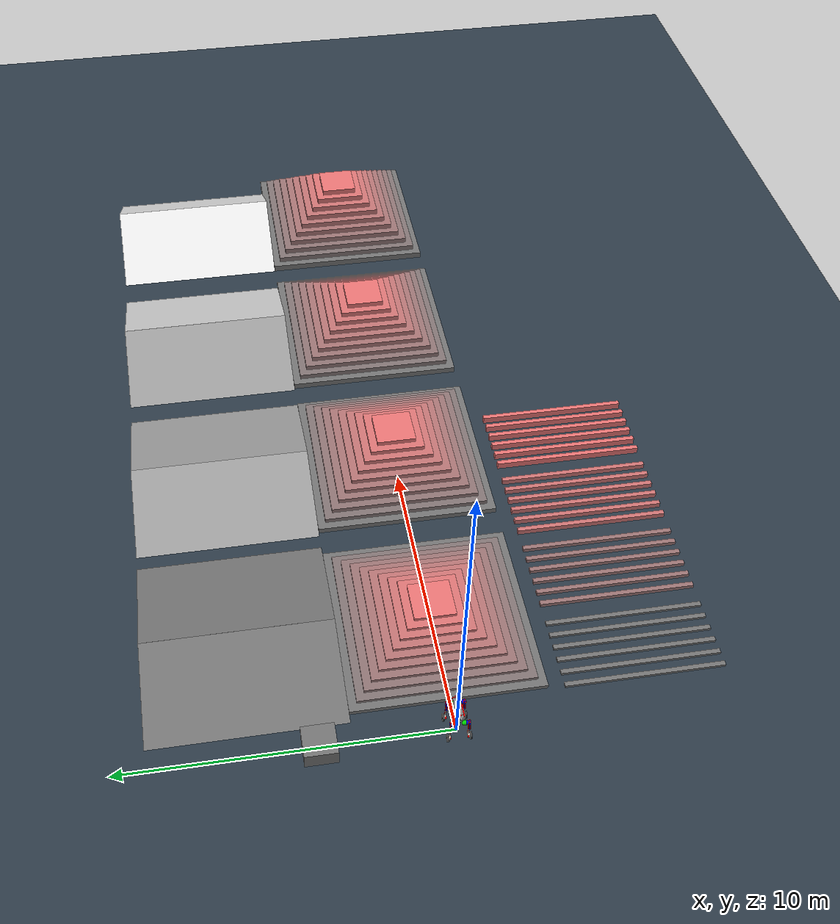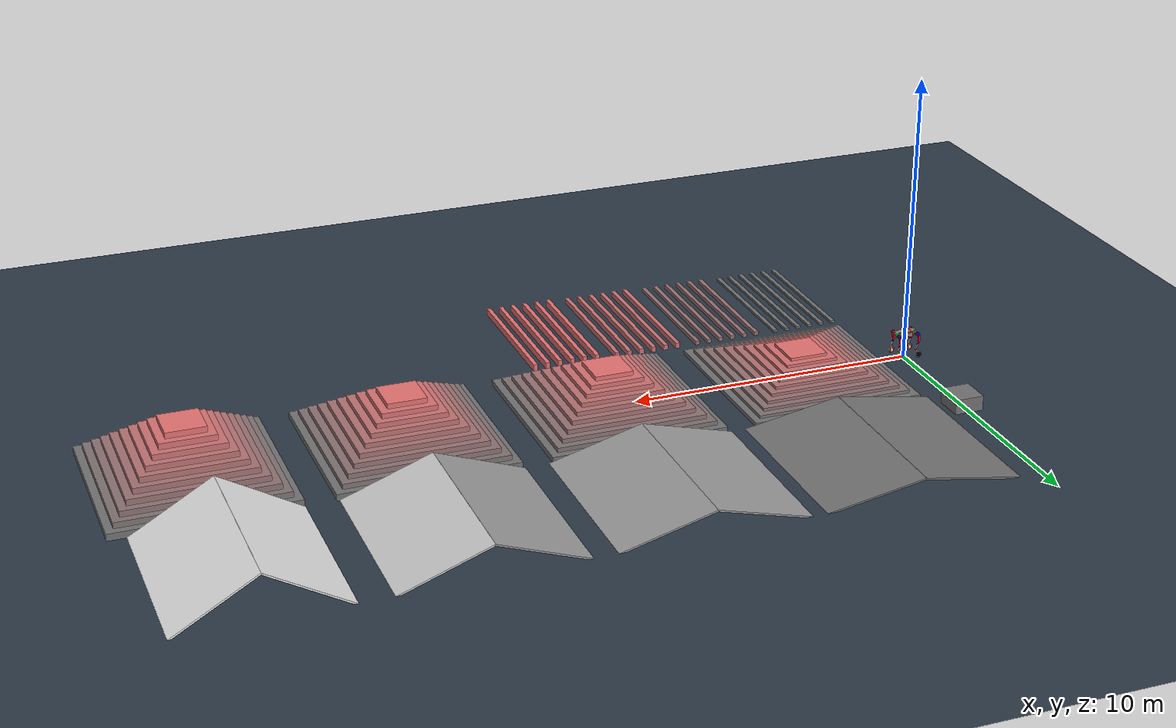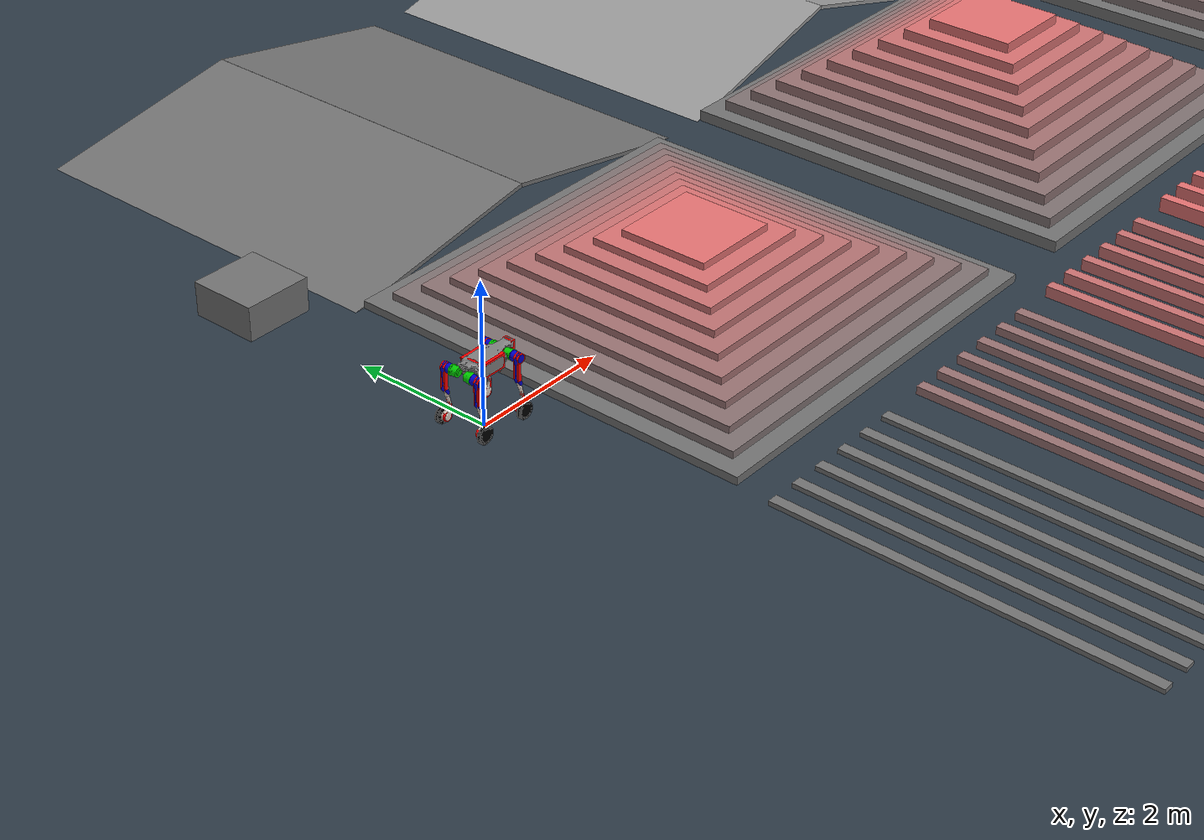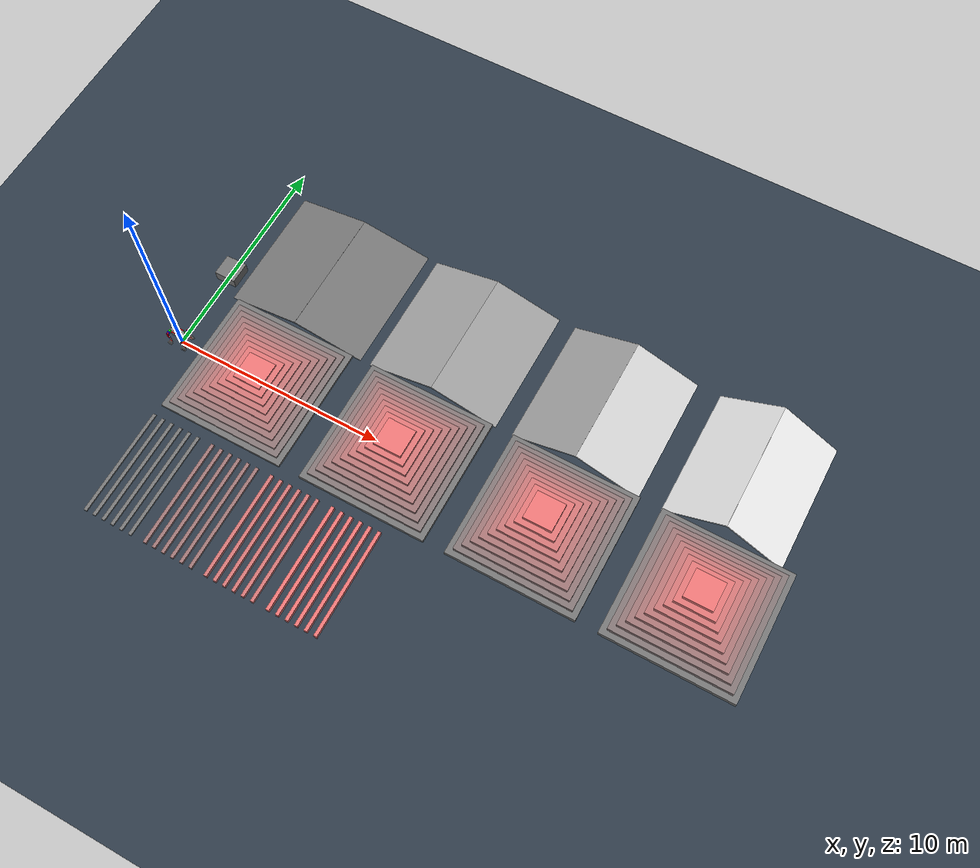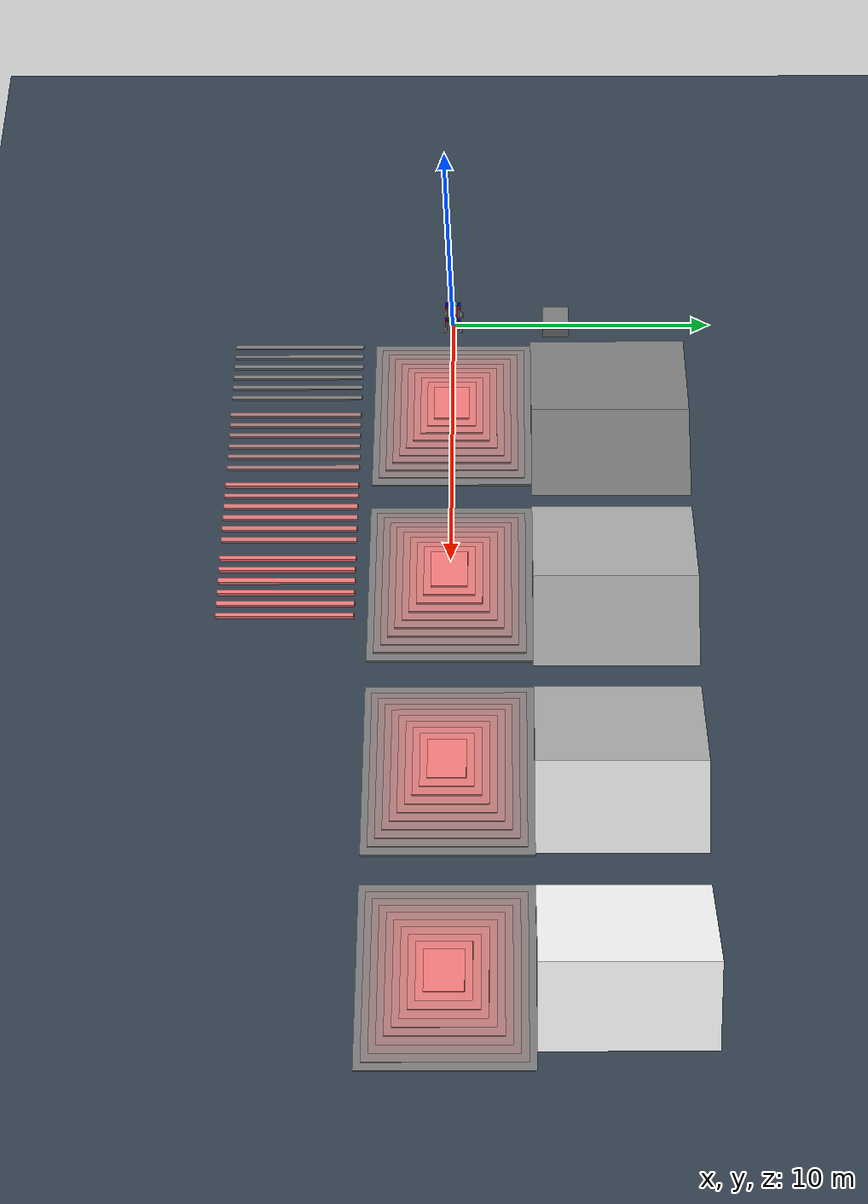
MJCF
<mujoco model="scene">
  <include file="dynawheel.xml"/>

  <statistic center="0 0 0.5" extent="2.0" />

  <asset>
    <texture type="skybox" builtin="gradient" rgb1="0.3 0.5 0.7" rgb2="0 0 0" width="512" height="3072"/>

    <texture type="2d" name="groundplane" builtin="checker" mark="edge" rgb1="0.2 0.3 0.4" rgb2="0.1 0.2 0.3" markrgb="0.8 0.8 0.8" width="300" height="300"/>
    <material name="groundplane" texture="groundplane" texuniform="true" texrepeat="5 5" reflectance="0.2"/>

    <texture name="texplane" type="2d" builtin="checker" rgb1=".25 .25 .25" rgb2="0.1 0.2 0.3" width="512" height="512" mark="cross" markrgb=".8 .8 .8"/>
    <material name="matplane" reflectance="0.0" texture="texplane" texrepeat="1 1" texuniform="true"/>
  </asset>

  <worldbody>

    <light pos="0 0 1.5" dir="0 0 -1" directional="true"/>
    <geom name="floor" pos="0 0 0" size="0 0 1" type="plane" material="matplane" contype="1"/>

    <geom pos="0.0 4.0 0.00" type="box"  size="0.5 0.5 0.48" quat="1.0 0 0 0" rgba="0.45 0.45 0.45 1"/>

    <geom pos="4.0 0.0 0.00" type="box"  size="3.00 3.00 0.10" quat="1.0 0 0 0" rgba="0.45 0.45 0.45 1"/>
    <geom pos="4.0 0.0 0.10" type="box"  size="2.74 2.74 0.10" quat="1.0 0 0 0" rgba="0.50 0.45 0.45 1"/>
    <geom pos="4.0 0.0 0.20" type="box"  size="2.48 2.48 0.10" quat="1.0 0 0 0" rgba="0.55 0.45 0.45 1"/>
    <geom pos="4.0 0.0 0.30" type="box"  size="2.22 2.22 0.10" quat="1.0 0 0 0" rgba="0.60 0.45 0.45 1"/>
    <geom pos="4.0 0.0 0.40" type="box"  size="1.96 1.96 0.10" quat="1.0 0 0 0" rgba="0.65 0.45 0.45 1"/>
    <geom pos="4.0 0.0 0.50" type="box"  size="1.70 1.70 0.10" quat="1.0 0 0 0" rgba="0.70 0.45 0.45 1"/>
    <geom pos="4.0 0.0 0.60" type="box"  size="1.44 1.44 0.10" quat="1.0 0 0 0" rgba="0.75 0.45 0.45 1"/>
    <geom pos="4.0 0.0 0.70" type="box"  size="1.18 1.18 0.10" quat="1.0 0 0 0" rgba="0.80 0.45 0.45 1"/>
    <geom pos="4.0 0.0 0.80" type="box"  size="0.92 0.92 0.10" quat="1.0 0 0 0" rgba="0.85 0.45 0.45 1"/>
    <geom pos="4.0 0.0 0.90" type="box"  size="0.66 0.66 0.10" quat="1.0 0 0 0" rgba="0.90 0.45 0.45 1"/>
    <geom pos="11.0 0.0 0.00" type="box"  size="3.00 3.00 0.15" quat="1.0 0 0 0" rgba="0.45 0.45 0.45 1"/>
    <geom pos="11.0 0.0 0.15" type="box"  size="2.74 2.74 0.15" quat="1.0 0 0 0" rgba="0.50 0.45 0.45 1"/>
    <geom pos="11.0 0.0 0.30" type="box"  size="2.48 2.48 0.15" quat="1.0 0 0 0" rgba="0.55 0.45 0.45 1"/>
    <geom pos="11.0 0.0 0.45" type="box"  size="2.22 2.22 0.15" quat="1.0 0 0 0" rgba="0.60 0.45 0.45 1"/>
    <geom pos="11.0 0.0 0.60" type="box"  size="1.96 1.96 0.15" quat="1.0 0 0 0" rgba="0.65 0.45 0.45 1"/>
    <geom pos="11.0 0.0 0.75" type="box"  size="1.70 1.70 0.15" quat="1.0 0 0 0" rgba="0.70 0.45 0.45 1"/>
    <geom pos="11.0 0.0 0.90" type="box"  size="1.44 1.44 0.15" quat="1.0 0 0 0" rgba="0.75 0.45 0.45 1"/>
    <geom pos="11.0 0.0 1.05" type="box"  size="1.18 1.18 0.15" quat="1.0 0 0 0" rgba="0.80 0.45 0.45 1"/>
    <geom pos="11.0 0.0 1.20" type="box"  size="0.92 0.92 0.15" quat="1.0 0 0 0" rgba="0.85 0.45 0.45 1"/>
    <geom pos="11.0 0.0 1.35" type="box"  size="0.66 0.66 0.15" quat="1.0 0 0 0" rgba="0.90 0.45 0.45 1"/>
    <geom pos="18.0 0.0 0.000" type="box"  size="3.00 3.00 0.175" quat="1.0 0 0 0" rgba="0.45 0.45 0.45 1"/>
    <geom pos="18.0 0.0 0.175" type="box"  size="2.74 2.74 0.175" quat="1.0 0 0 0" rgba="0.50 0.45 0.45 1"/>
    <geom pos="18.0 0.0 0.350" type="box"  size="2.48 2.48 0.175" quat="1.0 0 0 0" rgba="0.55 0.45 0.45 1"/>
    <geom pos="18.0 0.0 0.525" type="box"  size="2.22 2.22 0.175" quat="1.0 0 0 0" rgba="0.60 0.45 0.45 1"/>
    <geom pos="18.0 0.0 0.700" type="box"  size="1.96 1.96 0.175" quat="1.0 0 0 0" rgba="0.65 0.45 0.45 1"/>
    <geom pos="18.0 0.0 0.875" type="box"  size="1.70 1.70 0.175" quat="1.0 0 0 0" rgba="0.70 0.45 0.45 1"/>
    <geom pos="18.0 0.0 1.050" type="box"  size="1.44 1.44 0.175" quat="1.0 0 0 0" rgba="0.75 0.45 0.45 1"/>
    <geom pos="18.0 0.0 1.225" type="box"  size="1.18 1.18 0.175" quat="1.0 0 0 0" rgba="0.80 0.45 0.45 1"/>
    <geom pos="18.0 0.0 1.400" type="box"  size="0.92 0.92 0.175" quat="1.0 0 0 0" rgba="0.85 0.45 0.45 1"/>
    <geom pos="18.0 0.0 1.575" type="box"  size="0.66 0.66 0.175" quat="1.0 0 0 0" rgba="0.90 0.45 0.45 1"/>
    <geom pos="25.0 0.0 0.00" type="box"  size="3.00 3.00 0.20" quat="1.0 0 0 0" rgba="0.45 0.45 0.45 1"/>
    <geom pos="25.0 0.0 0.20" type="box"  size="2.74 2.74 0.20" quat="1.0 0 0 0" rgba="0.50 0.45 0.45 1"/>
    <geom pos="25.0 0.0 0.40" type="box"  size="2.48 2.48 0.20" quat="1.0 0 0 0" rgba="0.55 0.45 0.45 1"/>
    <geom pos="25.0 0.0 0.60" type="box"  size="2.22 2.22 0.20" quat="1.0 0 0 0" rgba="0.60 0.45 0.45 1"/>
    <geom pos="25.0 0.0 0.80" type="box"  size="1.96 1.96 0.20" quat="1.0 0 0 0" rgba="0.65 0.45 0.45 1"/>
    <geom pos="25.0 0.0 1.00" type="box"  size="1.70 1.70 0.20" quat="1.0 0 0 0" rgba="0.70 0.45 0.45 1"/>
    <geom pos="25.0 0.0 1.20" type="box"  size="1.44 1.44 0.20" quat="1.0 0 0 0" rgba="0.75 0.45 0.45 1"/>
    <geom pos="25.0 0.0 1.40" type="box"  size="1.18 1.18 0.20" quat="1.0 0 0 0" rgba="0.80 0.45 0.45 1"/>
    <geom pos="25.0 0.0 1.60" type="box"  size="0.92 0.92 0.20" quat="1.0 0 0 0" rgba="0.85 0.45 0.45 1"/>
    <geom pos="25.0 0.0 1.80" type="box"  size="0.66 0.66 0.20" quat="1.0 0 0 0" rgba="0.90 0.45 0.45 1"/>

    <geom pos="1.1 6 0" type="box" size="3.0 3.0 .03" euler="0 -0.1745 0" rgba="0.45 0.45 0.45 1"/>
    <geom pos="7.0 6 0" type="box" size="3.0 3.0 .03" euler="0 0.1745 0" rgba="0.45 0.45 0.45 1"/>
    <geom pos="8.1 6 0" type="box" size="3.0 3.0 .03" euler="0 -0.2618 0" rgba="0.60 0.60 0.60 1"/>
    <geom pos="13.88 6 0" type="box" size="3.0 3.0 .03" euler="0 0.2618 0" rgba="0.60 0.60 0.60 1"/>
    <geom pos="15.1 6 0" type="box" size="3.0 3.0 .03" euler="0 -0.3491 0" rgba="0.60 0.60 0.60 1"/>
    <geom pos="20.72 6 0" type="box" size="3.0 3.0 .03" euler="0 0.3491 0" rgba="0.80 0.80 0.80 1"/>
    <geom pos="22.1 6 0" type="box" size="3.0 3.0 .03" euler="0 -0.5236 0" rgba="0.90 0.90 0.90 1" friction="1.0 0.5 0.01"/>
    <geom pos="27.27 6 0" type="box" size="3.0 3.0 .03" euler="0 0.5236 0" rgba="0.90 0.90 0.90 1" friction="1.0 0.5 0.01"/>

    <geom pos="1.00 -6.0 0.00" type="box"  size="0.075 2.50 0.05" quat="1.0 0 0 0" rgba="0.45 0.45 0.45 1"/>
    <geom pos="1.45 -6.0 0.00" type="box"  size="0.075 2.50 0.05" quat="1.0 0 0 0" rgba="0.45 0.45 0.45 1"/>
    <geom pos="1.90 -6.0 0.00" type="box"  size="0.075 2.50 0.05" quat="1.0 0 0 0" rgba="0.45 0.45 0.45 1"/>
    <geom pos="2.35 -6.0 0.00" type="box"  size="0.075 2.50 0.05" quat="1.0 0 0 0" rgba="0.45 0.45 0.45 1"/>
    <geom pos="2.80 -6.0 0.00" type="box"  size="0.075 2.50 0.05" quat="1.0 0 0 0" rgba="0.45 0.45 0.45 1"/>
    <geom pos="3.25 -6.0 0.00" type="box"  size="0.075 2.50 0.05" quat="1.0 0 0 0" rgba="0.45 0.45 0.45 1"/>

    <geom pos="4.00 -6.0 0.00" type="box"  size="0.075 2.50 0.10" quat="1.0 0 0 0" rgba="0.60 0.45 0.45 1"/>
    <geom pos="4.45 -6.0 0.00" type="box"  size="0.075 2.50 0.10" quat="1.0 0 0 0" rgba="0.60 0.45 0.45 1"/>
    <geom pos="4.90 -6.0 0.00" type="box"  size="0.075 2.50 0.10" quat="1.0 0 0 0" rgba="0.60 0.45 0.45 1"/>
    <geom pos="5.35 -6.0 0.00" type="box"  size="0.075 2.50 0.10" quat="1.0 0 0 0" rgba="0.60 0.45 0.45 1"/>
    <geom pos="5.80 -6.0 0.00" type="box"  size="0.075 2.50 0.10" quat="1.0 0 0 0" rgba="0.60 0.45 0.45 1"/>
    <geom pos="6.25 -6.0 0.00" type="box"  size="0.075 2.50 0.10" quat="1.0 0 0 0" rgba="0.60 0.45 0.45 1"/>

    <geom pos="7.00 -6.0 0.00" type="box"  size="0.075 2.50 0.15" quat="1.0 0 0 0" rgba="0.80 0.45 0.45 1"/>
    <geom pos="7.45 -6.0 0.00" type="box"  size="0.075 2.50 0.15" quat="1.0 0 0 0" rgba="0.80 0.45 0.45 1"/>
    <geom pos="7.90 -6.0 0.00" type="box"  size="0.075 2.50 0.15" quat="1.0 0 0 0" rgba="0.80 0.45 0.45 1"/>
    <geom pos="8.35 -6.0 0.00" type="box"  size="0.075 2.50 0.15" quat="1.0 0 0 0" rgba="0.80 0.45 0.45 1"/>
    <geom pos="8.80 -6.0 0.00" type="box"  size="0.075 2.50 0.15" quat="1.0 0 0 0" rgba="0.80 0.45 0.45 1"/>
    <geom pos="9.25 -6.0 0.00" type="box"  size="0.075 2.50 0.15" quat="1.0 0 0 0" rgba="0.80 0.45 0.45 1"/>

    <geom pos="10.00 -6.0 0.00" type="box"  size="0.075 2.50 0.20" quat="1.0 0 0 0" rgba="0.90 0.45 0.45 1"/>
    <geom pos="10.45 -6.0 0.00" type="box"  size="0.075 2.50 0.20" quat="1.0 0 0 0" rgba="0.90 0.45 0.45 1"/>
    <geom pos="10.90 -6.0 0.00" type="box"  size="0.075 2.50 0.20" quat="1.0 0 0 0" rgba="0.90 0.45 0.45 1"/>
    <geom pos="11.35 -6.0 0.00" type="box"  size="0.075 2.50 0.20" quat="1.0 0 0 0" rgba="0.90 0.45 0.45 1"/>
    <geom pos="11.80 -6.0 0.00" type="box"  size="0.075 2.50 0.20" quat="1.0 0 0 0" rgba="0.90 0.45 0.45 1"/>
    <geom pos="12.25 -6.0 0.00" type="box"  size="0.075 2.50 0.20" quat="1.0 0 0 0" rgba="0.90 0.45 0.45 1"/>

  </worldbody>
</mujoco>

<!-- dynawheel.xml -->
<mujoco model="dynawheel">
  <compiler angle="radian" meshdir="../meshes/" autolimits="true"/>
  <option gravity='0 0 -9.806' iterations='50' solver='Newton' timestep='0.0005' cone="elliptic" impratio="100"/>

  <default>
    <material specular="0" shininess="0.25"/>

    <default class="dynawheel">
      <default class="visual">
        <geom contype="0" conaffinity="0" group="0" />
      </default>
      <default class="collision">
        <geom group="1" mass="0" density="0" />
      </default>
    </default>
  </default>

  <visual>
    <rgba com="0.502 1.0 0 0.5" contactforce="0.98 0.4 0.4 0.7" contactpoint="1.0 1.0 0.6 0.4"/>
    <scale com="0.2" forcewidth="0.035" contactwidth="0.10" contactheight="0.04"/>
  </visual>

  <asset>
    <mesh name="Base" file="base_simple.STL"/>
    <mesh name="LF_hip" file="lf_hip.STL"/>
    <mesh name="LF_thigh" file="lf_thigh.STL"/>
    <mesh name="RF_thigh" file="rf_thigh.STL"/>
    <mesh name="LF_calf" file="lf_calf.STL"/>
    <mesh name="RF_calf" file="rf_calf.STL"/>
    <mesh name="LF_wheel" file="lf_wheel.STL"/>
    <mesh name="RF_wheel" file="rf_wheel.STL"/>
    <mesh name="LIDAR" file="lidar.STL"/>
  </asset>

  <worldbody>
    <body name="Base" pos="0 0 0.90" quat="1 0 0 0" childclass="dynawheel">
    <joint name="floating_base" type="free" />
    <inertial mass="35.0" pos="0.0 -0.0 -0.0" fullinertia="0.236918 1.477981 1.527714 0.0 0.0 0.0"/>
    <geom pos="0 0 0" euler="0 0 0" type="mesh" contype="0" conaffinity="0" density="0" rgba="0.5 0.5 0.5 1" mesh="Base" group="1" />
    <geom pos="0.47403 0 0.01878" euler="0 0 0" type="mesh" contype="0" conaffinity="0" density="0" rgba="0.5 0.5 0.5 1" mesh="LIDAR" group="1" />
    <geom pos="0.0 0.0 0.0" euler="0 0 0" type="box" size="0.205 0.165 0.10" rgba="1 0 0 1" group="2" />
    <geom pos="0.185 0.105 -0.13" euler="0 0 0" type="box" size="0.0125 0.0125 0.03" rgba="1 0 0 1" group="2" />
    <geom pos="0.185 -0.105 -0.13" euler="0 0 0" type="box" size="0.0125 0.0125 0.03" rgba="1 0 0 1" group="2" />
    <geom pos="-0.185 0.105 -0.13" euler="0 0 0" type="box" size="0.0125 0.0125 0.03" rgba="1 0 0 1" group="2" />
    <geom pos="-0.185 -0.105 -0.13" euler="0 0 0" type="box" size="0.0125 0.0125 0.03" rgba="1 0 0 1" group="2" />
    <geom pos="0.456 0 0.024" euler="0 0 0" type="box" size="0.033 0.07 0.085" rgba="1 0 0 1" group="2" />
    <site name="imu" pos="0 0 0" quat="1 0 0 0"/>
      <body name="LF_hip" pos="0.346 0.09 0">
        <inertial mass="4.0" pos="-0.0037293 -0.0028271 -2.3984E-05" diaginertia="0.005458 0.008605 0.005981"/>
        <joint name="LF_HAA" pos="0 0 0" axis="1 0 0" range="-0.50 0.50" actuatorfrcrange="-200 200"/>
        <site name="LF_HAA_tor" pos="0 0 0" quat="1 0 0 0"/>
        <geom type="mesh" pos="0 0 0" euler="0 0 0" contype="0" conaffinity="0" density="0" rgba="0 0.8 0 1" mesh="LF_hip" group="1" />
        <body name="LF_thigh" pos="0.0 0.1733 0.0">
          <inertial mass="5.5" pos="-0.003963 -0.044529 -0.029278" fullinertia="0.068416 0.060125 0.017696 0.000018 -0.003286 0.000136"/>
          <joint name="LF_HFE" pos="0 0 0" axis="0 1 0" range="-1.57 3.14"/>
          <site name="LF_HFE_tor" pos="0 0 0" euler="0 0 0"/>
          <geom type="mesh" pos="0 0 0" euler="0 0 0" contype="0" conaffinity="0" density="0" rgba="0 0 0.8 1" mesh="LF_thigh" group="1" />
          <geom pos="0.0 0.0 0.0" euler="1.57 0 0" type="cylinder" size="0.065 0.035" rgba="1 0 0 1" group="2" />
          <geom pos="-0.035 0 -0.144" euler="0 0 0" type="box" size="0.028 0.035 0.155" rgba="1 0 0 1" group="2" />
          <body name="LF_calf" pos="0 0.0 -0.350">
            <inertial pos="0.006279 0.013363 -0.251104" mass="4.0" fullinertia="0.335338 0.337205 0.007327 0.000054 0.005346 0.018379"/>
            <joint name="LF_KFE" pos="0 0 0" axis="0 1 0" range="-2.74 -0.87" />
            <site name="LF_KFE_tor" pos="0 0 0" euler="0 0 0"/>
            <geom type="mesh" pos="0 0 0" euler="0 0 0" contype="0" conaffinity="0" density="0" rgba="0.870588 0.811765 0.764706 1" mesh="LF_calf" group="1" />
            <geom pos="0.002 0.0 0.008" euler="0 0.04 0" type="box" size="0.02 0.015 0.05" rgba="1 0 0 1" group="2" />
            <geom pos="0.025 0.0 -0.12" euler="0 -0.29 0" type="box" size="0.016 0.015 0.10" rgba="1 0 0 1" group="2" />
            <geom pos="0.054 0.0 -0.285" euler="0 0.01 0" type="box" size="0.014 0.015 0.075" rgba="1 0 0 1" group="2" />
            <geom pos="0.0 0.0 -0.350" euler="1.57 0 0" type="cylinder" size="0.068 0.015" rgba="1 0 0 1" group="2" />
            <body name="LF_wheel_motor" pos="0.0 0.0735 -0.35">
            <inertial pos="0 -0.0 0" mass="1.722" diaginertia="0.00781 0.014943 0.007809"/>
              <joint name="LF_WHEEL" pos="0 0 0" axis="0 1 0" range="-99999 99999" />
              <site name="LF_WHEEL_tor" pos="0 0 0" quat="1 0 0 0"/>
              <geom type="mesh" contype="0" conaffinity="0" density="0" rgba="0 0 0 1" mesh="LF_wheel" group="1"/>
              <geom pos="0 0 0" euler="1.57079632679 0 0" type="cylinder" size="0.116 0.026" friction="0.4 0.005 0.0001" rgba="0 0 0 1" group="2"/>
            </body>
          </body>
        </body>
      </body>
      <body name="LH_hip" pos="-0.346 0.09 0">
        <inertial mass="4.0" pos="0.0037293 -0.0028271 -2.3984E-05" diaginertia="0.005458 0.008605 0.005981"/>
        <joint name="LH_HAA" pos="0 0 0" axis="1 0 0" range="-0.50 0.50"/>
        <site name="LH_HAA_tor" pos="0 0 0" euler="0 0 0"/>
        <geom type="mesh" pos="0 0 0" euler="0 3.14 0" contype="0" conaffinity="0" density="0" rgba="0 0.8 0 1" mesh="LF_hip" group="1" />
        <body name="LH_thigh" pos="0.0 0.1733 0.0">
          <inertial mass="5.5" pos="-0.003963 -0.044529 -0.029278" fullinertia="0.068416 0.060125 0.017696 0.000018 -0.003286 0.000136"/>
          <joint name="LH_HFE" pos="0 0 0" axis="0 1 0" range="-1.43 4.58"/>
          <site name="LH_HFE_tor" pos="0 0 0" euler="0 0 0"/>
          <geom type="mesh" pos="0 0 0" euler="0 0 0" contype="0" conaffinity="0" density="0" rgba="0 0 0.8 1" mesh="LF_thigh" group="1" />
          <geom pos="0.0 0.0 0.0" euler="1.57 0 0" type="cylinder" size="0.065 0.035" rgba="1 0 0 1" group="2" />
          <geom pos="-0.035 0.0 -0.144" euler="0 0 0" type="box" size="0.028 0.035 0.155" rgba="1 0 0 1" group="2" />
          <body name="LH_calf" pos="0 0 -0.350">
            <inertial pos="0.006279 0.013363 -0.251104" mass="4.0" fullinertia="0.335338 0.337205 0.007327 0.000054 0.005346 0.018379"/>
            <joint name="LH_KFE" pos="0 0 0" axis="0 1 0" range="-2.74 -0.87" />
            <site name="LH_KFE_tor" pos="0 0 0" euler="0 0 0"/>
            <geom type="mesh" pos="0 0 0" euler="0 0 0" contype="0" conaffinity="0" density="0" rgba="0.870588 0.811765 0.764706 1" mesh="LF_calf" group="1" />
            <geom pos="0.002 0.0 0.008" euler="0 0.04 0" type="box" size="0.02 0.015 0.05" rgba="1 0 0 1" group="2" />
            <geom pos="0.025 0.0 -0.12" euler="0 -0.29 0" type="box" size="0.016 0.015 0.10" rgba="1 0 0 1" group="2" />
            <geom pos="0.054 0.0 -0.285" euler="0 0.01 0" type="box" size="0.014 0.015 0.075" rgba="1 0 0 1" group="2" />
            <geom pos="0.0 0.0 -0.350" euler="1.57 0 0" type="cylinder" size="0.068 0.015" rgba="1 0 0 1" group="2" />
            <body name="LH_wheel_motor" pos="0.0 0.0735 -0.35">
            <inertial pos="0 -0.000777 0" mass="1.722" diaginertia="0.00781 0.014943 0.007809"/>
              <joint name="LH_WHEEL" pos="0 0 0" axis="0 1 0" range="-99999 99999" />
              <site name="LH_WHEEL_tor" pos="0 0 0" quat="1 0 0 0"/>
              <geom type="mesh" contype="0" conaffinity="0" density="0" rgba="0 0 0 1" mesh="LF_wheel" group="1"/>
              <geom pos="0 0 0" euler="1.57079632679 0 0" type="cylinder" size="0.116 0.026" friction="0.4 0.005 0.0001" rgba="0 0 0 1" group="2"/>
            </body>
          </body>
        </body>
      </body>
      <body name="RF_hip" pos="0.346 -0.09 0">
        <inertial mass="4.0" pos="-0.0037293 0.0028271 -2.3984E-05" diaginertia="0.005458 0.008605 0.005981"/>
        <joint name="RF_HAA" pos="0 0 0" axis="1 0 0" range="-0.50 0.50"/>
        <site name="RF_HAA_tor" pos="0 0 0" quat="1 0 0 0"/>
        <geom type="mesh" pos="0 0 0" euler="3.14 0 0" contype="0" conaffinity="0" density="0" rgba="0 0.8 0 1" mesh="LF_hip" group="1" />
        <body name="RF_thigh" pos="0.0 -0.1733 0.0">
          <inertial mass="5.5" pos="-0.003963 0.044529 -0.029278" fullinertia="0.068416 0.060125 0.017696 -0.000018 -0.003286 -0.000136"/>
          <joint name="RF_HFE" pos="0 0 0" axis="0 1 0" range="-1.43 4.58"/>
          <site name="RF_HFE_tor" pos="0 0 0" euler="0 0 0"/>
          <geom type="mesh" pos="0 0 0" euler="0 0 0" contype="0" conaffinity="0" density="0" rgba="0 0 0.8 1" mesh="RF_thigh" group="1" />
          <geom pos="0.0 0.0 0.0" euler="1.57 0 0" type="cylinder" size="0.065 0.035" rgba="1 0 0 1" group="2" />
          <geom pos="-0.035 0 -0.144" euler="0 0 0" type="box" size="0.028 0.035 0.155" rgba="1 0 0 1" group="2" />
          <body name="RF_calf" pos="0 0.0 -0.350">
            <inertial pos="0.006279 -0.013363 -0.251104" mass="4.0" fullinertia="0.335338 0.337205 0.007327 -0.000054 0.005346 -0.018379"/>
            <joint name="RF_KFE" pos="0 0 0" axis="0 1 0" range="-2.74 -0.87"/>
            <site name="RF_KFE_tor" pos="0 0 0" euler="0 0 0"/>
            <geom type="mesh" pos="0 0 0" euler="3.141592653589793 0 0" contype="0" conaffinity="0" density="0" rgba="0.870588 0.811765 0.764706 1" mesh="RF_calf" group="1" />
            <geom pos="0.002 0.0 0.008" euler="0 0.04 0" type="box" size="0.02 0.015 0.05" rgba="1 0 0 1" group="2" />
            <geom pos="0.025 0.0 -0.12" euler="0 -0.29 0" type="box" size="0.016 0.015 0.10" rgba="1 0 0 1" group="2" />
            <geom pos="0.054 0.0 -0.285" euler="0 0.01 0" type="box" size="0.014 0.015 0.075" rgba="1 0 0 1" group="2" />
            <geom pos="0.0 0.0 -0.350" euler="1.57 0 0" type="cylinder" size="0.068 0.015" rgba="1 0 0 1" group="2" />
            <body name="RF_wheel_motor" pos="0.0 -0.0735 -0.35">
            <inertial pos="0 0.000777 0" mass="1.722" diaginertia="0.00781 0.014943 0.007809"/>
              <joint name="RF_WHEEL" pos="0 0 0" axis="0 1 0" range="-99999 99999"/>
              <site name="RF_WHEEL_tor" pos="0 0 0" quat="1 0 0 0"/>
              <geom type="mesh" contype="0" conaffinity="0" density="0" rgba="0 0 0 1" mesh="RF_wheel" group="1"/>
              <geom pos="0 0 0" euler="1.57079632679 0 0" type="cylinder" size="0.116 0.026" friction="0.4 0.005 0.0001" rgba="0 0 0 1" group="2"/>
            </body>
          </body>
        </body>
      </body>
      <body name="RH_hip" pos="-0.346 -0.09 0">
        <inertial mass="4.0" pos="0.0037293 0.0028271 -2.3984E-05" diaginertia="0.005458 0.008605 0.005981"/>
        <joint name="RH_HAA" pos="0 0 0" axis="1 0 0" range="-0.50 0.50"/>
        <site name="RH_HAA_tor" pos="0 0 0" quat="1 0 0 0"/>
        <geom type="mesh" pos="0 0 0" euler="0 0 3.14" contype="0" conaffinity="0" density="0" rgba="0 0.8 0 1" mesh="LF_hip" group="1" />
        <body name="RH_thigh" pos="0.0 -0.1733 0.0">
          <inertial mass="5.5" pos="-0.003963 0.044529 -0.029278" fullinertia="0.068416 0.060125 0.017696 -0.000018 -0.003286 -0.000136"/>
          <joint name="RH_HFE" pos="0 0 0" axis="0 1 0" range="-1.43 4.58"/>
          <site name="RH_HFE_tor" pos="0 0 0" euler="0 0 0"/>
          <geom type="mesh" pos="0 0 0" euler="0 0 0" contype="0" conaffinity="0" density="0" rgba="0 0 0.8 1" mesh="RF_thigh" group="1" />
          <geom pos="0.0 0.0 0.0" euler="1.57 0 0" type="cylinder" size="0.065 0.035" rgba="1 0 0 1" group="2" />
          <geom pos="-0.035 0 -0.144" euler="0 0 0" type="box" size="0.028 0.035 0.155" rgba="1 0 0 1" group="2" />
          <body name="RH_calf" pos="0 0.0 -0.350">
            <inertial pos="0.006279 -0.013363 -0.251104" mass="4.0" fullinertia="0.335338 0.337205 0.007327 -0.000054 0.005346 -0.018379"/>
            <joint name="RH_KFE" pos="0 0 0" axis="0 1 0" range="-2.74 -0.87"/>
            <site name="RH_KFE_tor" pos="0 0 0" euler="0 0 0"/>
            <geom type="mesh" pos="0 0 0" euler="3.141592653589793 0 0" contype="0" conaffinity="0" density="0" rgba="0.870588 0.811765 0.764706 1" mesh="RF_calf" group="1" />
            <geom pos="0.002 0.0 0.008" euler="0 0.04 0" type="box" size="0.02 0.015 0.05" rgba="1 0 0 1" group="2" />
            <geom pos="0.025 0.0 -0.12" euler="0 -0.29 0" type="box" size="0.016 0.015 0.10" rgba="1 0 0 1" group="2" />
            <geom pos="0.054 0.0 -0.285" euler="0 0.01 0" type="box" size="0.014 0.015 0.075" rgba="1 0 0 1" group="2" />
            <geom pos="0.0 0.0 -0.350" euler="1.57 0 0" type="cylinder" size="0.068 0.015" rgba="1 0 0 1" group="2" />
            <body name="RH_wheel_motor" pos="0.0 -0.0735 -0.35">
            <inertial pos="0 0.000777 0" mass="1.722" diaginertia="0.00781 0.014943 0.007809"/>
              <joint name="RH_WHEEL" pos="0 0 0" axis="0 1 0" range="-99999 99999"/>
              <site name="RH_WHEEL_tor" pos="0 0 0" quat="1 0 0 0"/>
              <geom type="mesh" contype="0" conaffinity="0" density="0" rgba="0 0 0 1" mesh="RF_wheel" group="1"/>
              <geom pos="0 0 0" euler="1.57079632679 0 0" type="cylinder" size="0.116 0.026" friction="0.4 0.005 0.0001" rgba="0 0 0 1" group="2"/>
            </body>
          </body>
        </body>
      </body>
    </body>
  </worldbody>

  <contact>
    <exclude body1="Base" body2="LF_thigh"/>
    <exclude body1="Base" body2="LH_thigh"/>
    <exclude body1="Base" body2="RF_thigh"/>
    <exclude body1="Base" body2="RH_thigh"/>
    <exclude body1="LF_thigh" body2="LF_calf"/>
    <exclude body1="LH_thigh" body2="LH_calf"/>
    <exclude body1="RF_thigh" body2="RF_calf"/>
    <exclude body1="RH_thigh" body2="RH_calf"/>

    <exclude body1="LF_calf" body2="LF_wheel_motor"/>
    <exclude body1="LH_calf" body2="LH_wheel_motor"/>
    <exclude body1="RF_calf" body2="RF_wheel_motor"/>
    <exclude body1="RH_calf" body2="RH_wheel_motor"/>

    <exclude body1="LF_thigh" body2="LF_wheel_motor"/>
    <exclude body1="LH_thigh" body2="LH_wheel_motor"/>
    <exclude body1="RF_thigh" body2="RF_wheel_motor"/>
    <exclude body1="RH_thigh" body2="RH_wheel_motor"/>
    <exclude body1="Base" body2="LF_wheel_motor"/>
    <exclude body1="Base" body2="LH_wheel_motor"/>
    <exclude body1="Base" body2="RF_wheel_motor"/>
    <exclude body1="Base" body2="RH_wheel_motor"/>
  </contact>

  <actuator>
    <motor name="LF_HAA" joint="LF_HAA" gear="1" ctrllimited="true" ctrlrange="-200.1 +200.1"/>
    <motor name="LF_HFE" joint="LF_HFE" gear="1" ctrllimited="true" ctrlrange="-200.2 +200.2"/>
    <motor name="LF_KFE" joint="LF_KFE" gear="1" ctrllimited="true" ctrlrange="-200.3 +200.3"/>
    <motor name="LF_WHEEL" joint="LF_WHEEL" gear="1" ctrllimited="true" ctrlrange="-75.3 +75.3"/>
    <motor name="LH_HAA" joint="LH_HAA" gear="1" ctrllimited="true" ctrlrange="-200.1 +200.1"/>
    <motor name="LH_HFE" joint="LH_HFE" gear="1" ctrllimited="true" ctrlrange="-200.2 +200.2"/>
    <motor name="LH_KFE" joint="LH_KFE" gear="1" ctrllimited="true" ctrlrange="-200.3 +200.3"/>
    <motor name="LH_WHEEL" joint="LH_WHEEL" gear="1" ctrllimited="true" ctrlrange="-75.3 +75.3"/>
    <motor name="RF_HAA" joint="RF_HAA" gear="1" ctrllimited="true" ctrlrange="-200.1 +200.1"/>
    <motor name="RF_HFE" joint="RF_HFE" gear="1" ctrllimited="true" ctrlrange="-200.2 +200.2"/>
    <motor name="RF_KFE" joint="RF_KFE" gear="1" ctrllimited="true" ctrlrange="-200.3 +200.3"/>
    <motor name="RF_WHEEL" joint="RF_WHEEL" gear="1" ctrllimited="true" ctrlrange="-75.3 +75.3"/>
    <motor name="RH_HAA" joint="RH_HAA" gear="1" ctrllimited="true" ctrlrange="-200.1 +200.1"/>
    <motor name="RH_HFE" joint="RH_HFE" gear="1" ctrllimited="true" ctrlrange="-200.2 +200.2"/>
    <motor name="RH_KFE" joint="RH_KFE" gear="1" ctrllimited="true" ctrlrange="-200.3 +200.3"/>
    <motor name="RH_WHEEL" joint="RH_WHEEL" gear="1" ctrllimited="true" ctrlrange="-75.3 +75.3"/>
  </actuator>

  <sensor>
    <framequat name="Body_Quat" objtype="site" objname="imu"/>
    <gyro name="Body_Gyro" site="imu"/>
    <accelerometer name="Body_Acc" site="imu"/>
    <jointpos name="LF_HAA_pos" joint="LF_HAA"/>
    <jointpos name="LF_HFE_pos" joint="LF_HFE"/>
    <jointpos name="LF_KFE_pos" joint="LF_KFE"/>
    <jointpos name="LH_HAA_pos" joint="LH_HAA"/>
    <jointpos name="LH_HFE_pos" joint="LH_HFE"/>
    <jointpos name="LH_KFE_pos" joint="LH_KFE"/>
    <jointpos name="RF_HAA_pos" joint="RF_HAA"/>
    <jointpos name="RF_HFE_pos" joint="RF_HFE"/>
    <jointpos name="RF_KFE_pos" joint="RF_KFE"/>
    <jointpos name="RH_HAA_pos" joint="RH_HAA"/>
    <jointpos name="RH_HFE_pos" joint="RH_HFE"/>
    <jointpos name="RH_KFE_pos" joint="RH_KFE"/>
    <jointpos name="LF_WHEEL_pos" joint="LF_WHEEL"/>
    <jointpos name="LH_WHEEL_pos" joint="LH_WHEEL"/>
    <jointpos name="RF_WHEEL_pos" joint="RF_WHEEL"/>
    <jointpos name="RH_WHEEL_pos" joint="RH_WHEEL"/>

    <jointvel name="LF_HAA_vel" joint="LF_HAA"/>
    <jointvel name="LF_HFE_vel" joint="LF_HFE"/>
    <jointvel name="LF_KFE_vel" joint="LF_KFE"/>
    <jointvel name="LH_HAA_vel" joint="LH_HAA"/>
    <jointvel name="LH_HFE_vel" joint="LH_HFE"/>
    <jointvel name="LH_KFE_vel" joint="LH_KFE"/>
    <jointvel name="RF_HAA_vel" joint="RF_HAA"/>
    <jointvel name="RF_HFE_vel" joint="RF_HFE"/>
    <jointvel name="RF_KFE_vel" joint="RF_KFE"/>
    <jointvel name="RH_HAA_vel" joint="RH_HAA"/>
    <jointvel name="RH_HFE_vel" joint="RH_HFE"/>
    <jointvel name="RH_KFE_vel" joint="RH_KFE"/>
    <jointvel name="LF_WHEEL_vel" joint="LF_WHEEL"/>
    <jointvel name="LH_WHEEL_vel" joint="LH_WHEEL"/>
    <jointvel name="RF_WHEEL_vel" joint="RF_WHEEL"/>
    <jointvel name="RH_WHEEL_vel" joint="RH_WHEEL"/>

    <torque name="LF_HAA_tor" site="LF_HAA_tor"/>
    <torque name="LF_HFE_tor" site="LF_HFE_tor"/>
    <torque name="LF_KFE_tor" site="LF_KFE_tor"/>
    <torque name="LH_HAA_tor" site="LH_HAA_tor"/>
    <torque name="LH_HFE_tor" site="LH_HFE_tor"/>
    <torque name="LH_KFE_tor" site="LH_KFE_tor"/>
    <torque name="RF_HAA_tor" site="RF_HAA_tor"/>
    <torque name="RF_HFE_tor" site="RF_HFE_tor"/>
    <torque name="RF_KFE_tor" site="RF_KFE_tor"/>
    <torque name="RH_HAA_tor" site="RH_HAA_tor"/>
    <torque name="RH_HFE_tor" site="RH_HFE_tor"/>
    <torque name="RH_KFE_tor" site="RH_KFE_tor"/>
    <torque name="LF_WHEEL_tor" site="LF_WHEEL_tor"/>
    <torque name="LH_WHEEL_tor" site="LH_WHEEL_tor"/>
    <torque name="RF_WHEEL_tor" site="RF_WHEEL_tor"/>
    <torque name="RH_WHEEL_tor" site="RH_WHEEL_tor"/>

  </sensor>

  <keyframe>
    <key name="lie" qpos="0.0 0.0 0.14
                            1.0 0.0 0.0 0.0
                            +0.46 +1.06 -2.73 0.0
                            +0.46 +1.06 -2.73 0.0
                            -0.46 +1.06 -2.73 0.0
                            -0.46 +1.06 -2.73 0.0"
                    ctrl="-0.0 +0.0 -0.0 0.0
                          -0.0 -0.0 +0.0 0.0
                          +0.0 +0.0 -0.0 0.0
                          +0.0 -0.0 +0.0 0.0"/>
  </keyframe>

</mujoco>
